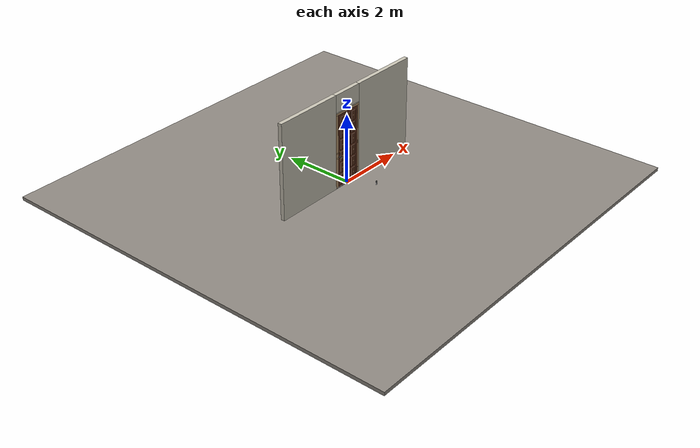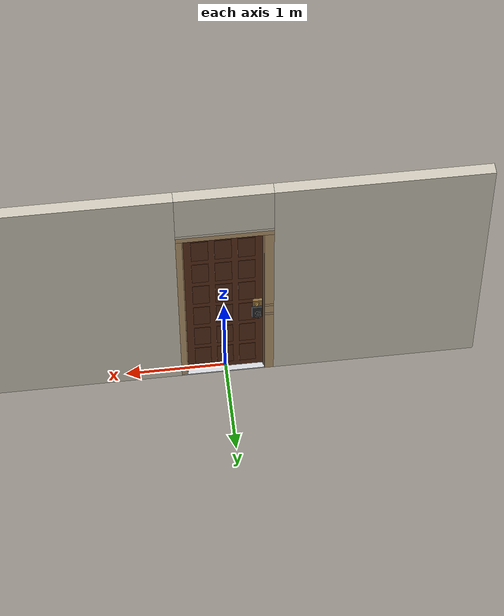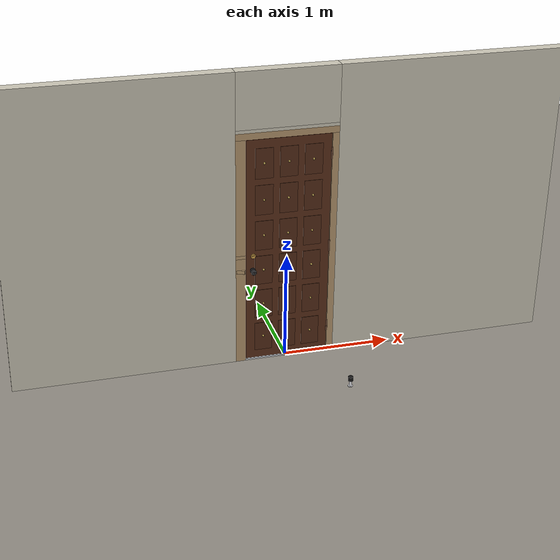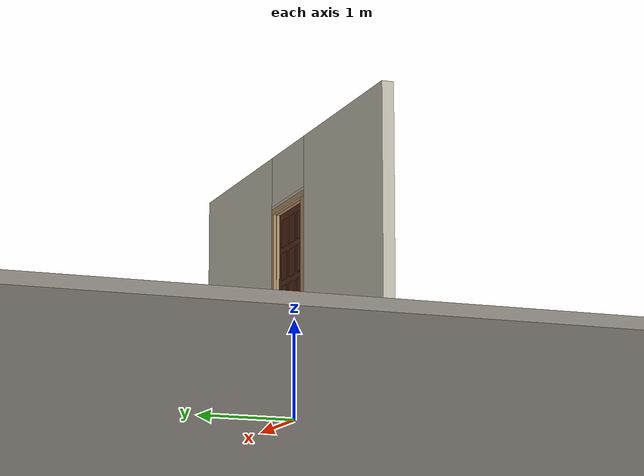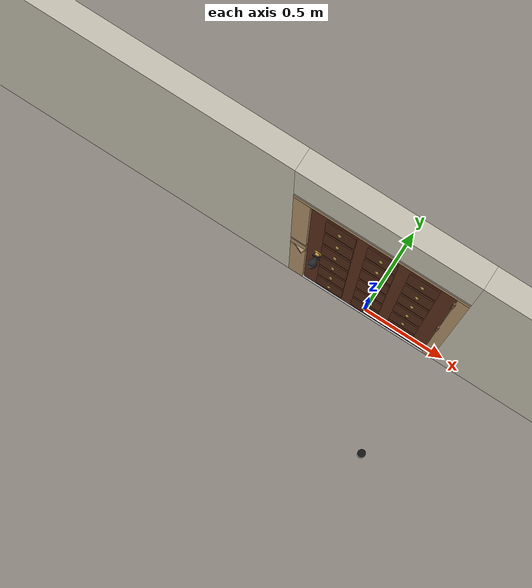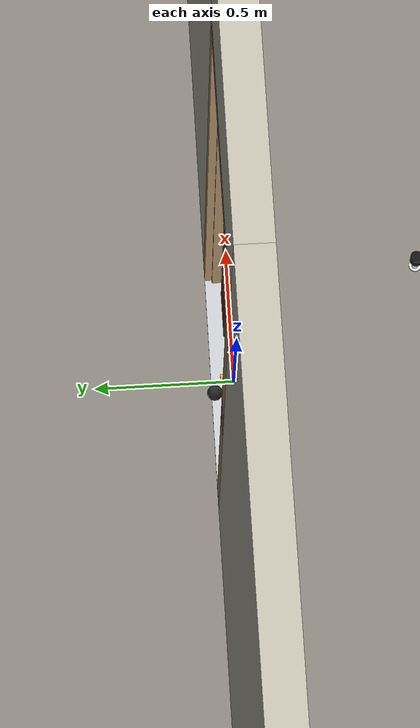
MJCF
<?xml version="1.0" ?>
<mujoco model="db0122_swing_single_full">
  <compiler angle="radian" meshdir="../../hardware" texturedir="../../textures" autolimits="true" inertiafromgeom="false"/>
  <option timestep="0.002" integrator="implicitfast" cone="elliptic" impratio="10" noslip_iterations="3">
    <flag multiccd="enable"/>
  </option>
  <size memory="16M"/>
  <default>
    <geom condim="4" solref="0.005 1" solimp="0.95 0.99 0.001"/>
    <joint solreflimit="0.005 1" solimplimit="0.95 0.99 0.001"/>
    <tendon solreflimit="0.005 1"/>
    <equality solref="0.002 1"/>
  </default>
  <visual>
    <headlight ambient="0.4 0.4 0.4" diffuse="0.7 0.7 0.7" specular="0.2 0.2 0.2"/>
    <quality shadowsize="4096"/>
    <map znear="0.01" zfar="60"/>
  </visual>
  <asset>
    <mesh name="cyl_face_e9e5036966" file="cyl_face_e9e5036966.obj"/>
    <mesh name="hinge_18a63ca062" file="hinge_18a63ca062.obj"/>
    <mesh name="hinge_jamb_e6260b1afb" file="hinge_jamb_e6260b1afb.obj"/>
    <mesh name="knob_3926f4c53b" file="knob_3926f4c53b.obj"/>
    <mesh name="thumbturn_eb5c9899a3" file="thumbturn_eb5c9899a3.obj"/>
    <material name="mat_floor" rgba="0.55 0.53 0.5 1" specular="0.2" shininess="0.15" reflectance="0"/>
    <material name="mat_wall" rgba="0.78 0.76 0.7 1" specular="0.2" shininess="0.1" reflectance="0"/>
    <material name="mat_leaf" rgba="0.35 0.18 0.1 1" specular="0.2" shininess="0.4" reflectance="0"/>
    <material name="mat_leaf_panel" rgba="0.322 0.166 0.092 1" specular="0.2" shininess="0.4" reflectance="0"/>
    <material name="mat_button" rgba="0.7 0.6 0.3 1" specular="0.8" shininess="0.7" reflectance="0.4"/>
    <material name="mat_hinge" rgba="0.45 0.3 0.22 1" specular="0.5" shininess="0.1" reflectance="0.2"/>
    <material name="mat_op_cast_iron" rgba="0.15 0.15 0.16 1" specular="0.5" shininess="0.2" reflectance="0.2"/>
    <material name="mat_rim_case" rgba="0.15 0.15 0.16 1" specular="0.5" shininess="0.2" reflectance="0.2"/>
    <material name="mat_trim" rgba="0.85 0.66 0.3 1" specular="0.8" shininess="0.75" reflectance="0.4"/>
    <material name="mat_bolt" rgba="0.85 0.66 0.3 1" specular="0.8" shininess="0.75" reflectance="0.4"/>
    <material name="mat_night_latch" rgba="0.55 0.42 0.22 1" specular="0.74" shininess="0.45" reflectance="0.36"/>
    <material name="mat_deadbolt" rgba="0.85 0.66 0.3 1" specular="0.8" shininess="0.75" reflectance="0.4"/>
    <material name="mat_frame" rgba="0.7 0.58 0.42 1" specular="0.2" shininess="0.5" reflectance="0"/>
    <material name="mat_threshold" rgba="0.8 0.81 0.83 1" specular="0.8" shininess="0.6" reflectance="0.4"/>
    <material name="mat_bumper_stop" rgba="0.08 0.08 0.08 1" specular="0.2" shininess="0.1" reflectance="0"/>
    <material name="mat_stop_base" rgba="0.9 0.9 0.92 1" specular="0.8" shininess="0.9" reflectance="0.4"/>
    <texture name="skybox" type="skybox" builtin="gradient" rgb1="0.6 0.7 0.85" rgb2="0.9 0.92 0.95" width="256" height="256"/>
  </asset>
  <worldbody>
    <light name="sun" pos="1.5 -2.5 4" dir="-0.3 0.5 -0.8" directional="true" diffuse="0.8 0.8 0.8" specular="0.3 0.3 0.3" castshadow="true"/>
    <light name="fill" pos="-1.5 2.5 3" dir="0.3 -0.5 -0.7" directional="true" diffuse="0.35 0.35 0.4" castshadow="false"/>
    <camera name="robot_view" pos="0 -2.612312 1.812087" xyaxes="1 0 0 0 0.26963 0.962964" fovy="52"/>
    <camera name="far_view" pos="0 2.663312 1.812087" xyaxes="-1 0 0 0 -0.26963 0.962964" fovy="52"/>
    <camera name="iso" pos="-2.004737 -2.190262 2.234138" xyaxes="0.741536 -0.670913 0 0.242917 0.268487 0.932151" fovy="46"/>
    <camera name="detail_handle" pos="-0.14 -0.8725 1.194" xyaxes="0.97561 0.219512 0 -0.070934 0.315262 0.94635" fovy="38"/>
    <geom name="floor" type="box" size="6 6 0.05" pos="0 0 -0.05" material="mat_floor" group="0" contype="1" conaffinity="1" friction="0.8 0.005 0.0001" density="2400"/>
    <geom name="wall_left" type="box" size="1.0125 0.0575 1.3735" pos="-1.4875 0.0255 1.3735" material="mat_wall" group="0" contype="1" conaffinity="1" friction="0.6 0.005 0.0001" density="800"/>
    <geom name="wall_right" type="box" size="1.0275 0.0575 1.3735" pos="1.4725 0.0255 1.3735" material="mat_wall" group="0" contype="1" conaffinity="1" friction="0.6 0.005 0.0001" density="800"/>
    <geom name="wall_header" type="box" size="0.46 0.0575 0.255" pos="-0.015 0.0255 2.492" material="mat_wall" group="0" contype="1" conaffinity="1" friction="0.6 0.005 0.0001" density="800"/>
    <geom name="hinge_0_jamb" type="mesh" mesh="hinge_jamb_e6260b1afb" pos="0.382 -0.032 0.267" quat="0 0 1 0" material="mat_hinge" group="1" contype="0" conaffinity="0" density="7850"/>
    <geom name="hinge_1_jamb" type="mesh" mesh="hinge_jamb_e6260b1afb" pos="0.382 -0.032 1.08" quat="0 0 1 0" material="mat_hinge" group="1" contype="0" conaffinity="0" density="7850"/>
    <geom name="hinge_2_jamb" type="mesh" mesh="hinge_jamb_e6260b1afb" pos="0.382 -0.032 1.963" quat="0 0 1 0" material="mat_hinge" group="1" contype="0" conaffinity="0" density="7850"/>
    <geom name="leaf_deadbolt_strike_b" type="box" size="0.0155 0.003 0.0005" pos="-0.3845 0 1.0355" quat="0.5 0.5 0.5 0.5" material="mat_deadbolt" group="1" contype="0" conaffinity="0" density="7800"/>
    <geom name="leaf_deadbolt_strike_l" type="box" size="0.003 0.0155 0.0005" pos="-0.3845 -0.0125 1.054" quat="0.5 0.5 0.5 0.5" material="mat_deadbolt" group="1" contype="0" conaffinity="0" density="7800"/>
    <geom name="leaf_deadbolt_strike_t" type="box" size="0.0155 0.003 0.0005" pos="-0.3845 0 1.0725" quat="0.5 0.5 0.5 0.5" material="mat_deadbolt" group="1" contype="0" conaffinity="0" density="7800"/>
    <geom name="leaf_deadbolt_strike_r" type="box" size="0.003 0.0155 0.0005" pos="-0.3845 0.0125 1.054" quat="0.5 0.5 0.5 0.5" material="mat_deadbolt" group="1" contype="0" conaffinity="0" density="7800"/>
    <geom name="jamb_hinge" type="box" size="0.03 0.0575 1.0735" pos="0.415 0.0255 1.0735" material="mat_frame" group="0" contype="1" conaffinity="1" friction="0.6 0.005 0.0001" density="750"/>
    <geom name="strike_914_wall_n" type="box" size="0.045 0.037575 0.0167" pos="-0.43 0.045425 0.914" material="mat_frame" group="0" contype="1" conaffinity="1" friction="0.6 0.005 0.0001" density="750"/>
    <geom name="strike_914_wall_p" type="box" size="0.045 0.008 0.0167" pos="-0.43 -0.01585 0.914" material="mat_frame" group="0" contype="1" conaffinity="1" friction="0.6 0.005 0.0001" density="750"/>
    <geom name="strike_914_ramp" type="box" size="0.045 0.01649 0.0167" pos="-0.432784 -0.020157 0.914" quat="0.977148 0 0 -0.212558" material="mat_frame" group="0" contype="1" conaffinity="1" friction="0.12 0.005 0.0001" density="750"/>
    <geom name="strike_914_back" type="box" size="0.03665 0.00785 0.0167" pos="-0.43835 0 0.914" material="mat_frame" group="0" contype="1" conaffinity="1" friction="0.6 0.005 0.0001" density="750"/>
    <geom name="strike_1054_wall_n" type="box" size="0.045 0.03675 0.0155" pos="-0.43 0.04625 1.054" material="mat_frame" group="0" contype="1" conaffinity="1" friction="0.6 0.005 0.0001" density="750"/>
    <geom name="strike_1054_wall_p" type="box" size="0.045 0.01125 0.0155" pos="-0.43 -0.02075 1.054" material="mat_frame" group="0" contype="1" conaffinity="1" friction="0.6 0.005 0.0001" density="750"/>
    <geom name="strike_1054_back" type="box" size="0.035 0.0095 0.0155" pos="-0.44 0 1.054" material="mat_frame" group="0" contype="1" conaffinity="1" friction="0.6 0.005 0.0001" density="750"/>
    <geom name="jamb_strike_0" type="box" size="0.045 0.0575 0.44865" pos="-0.43 0.0255 0.44865" material="mat_frame" group="0" contype="1" conaffinity="1" friction="0.6 0.005 0.0001" density="750"/>
    <geom name="jamb_strike_1" type="box" size="0.045 0.0575 0.0539" pos="-0.43 0.0255 0.9846" material="mat_frame" group="0" contype="1" conaffinity="1" friction="0.6 0.005 0.0001" density="750"/>
    <geom name="jamb_strike_2" type="box" size="0.045 0.0575 0.53875" pos="-0.43 0.0255 1.60825" material="mat_frame" group="0" contype="1" conaffinity="1" friction="0.6 0.005 0.0001" density="750"/>
    <geom name="jamb_head" type="box" size="0.46 0.0575 0.03" pos="-0.015 0.0255 2.177" material="mat_frame" group="0" contype="1" conaffinity="1" friction="0.6 0.005 0.0001" density="750"/>
    <geom name="head_stud" type="box" size="0.46 0.0575 0.015" pos="-0.015 0.0255 2.222" material="mat_wall" group="0" contype="1" conaffinity="1" friction="0.6 0.005 0.0001" density="500"/>
    <geom name="stop_hinge" type="box" size="0.0055 0.016 1.0735" pos="0.3795 0.0415 1.0735" material="mat_frame" group="0" contype="1" conaffinity="1" friction="0.6 0.005 0.0001" density="750"/>
    <geom name="stop_strike" type="box" size="0.0055 0.016 1.0735" pos="-0.3795 0.0415 1.0735" material="mat_frame" group="0" contype="1" conaffinity="1" friction="0.6 0.005 0.0001" density="750"/>
    <geom name="stop_head" type="box" size="0.385 0.016 0.0055" pos="0 0.0415 2.1415" material="mat_frame" group="0" contype="1" conaffinity="1" friction="0.6 0.005 0.0001" density="750"/>
    <geom name="threshold" type="box" size="0.445 0.0575 0.0065" pos="0 0.0255 0.0065" material="mat_threshold" group="0" contype="1" conaffinity="1" friction="0.5 0.005 0.0001" density="2700"/>
    <geom name="door_stop_base" type="cylinder" size="0.022 0.003" pos="0.404 -0.6797 0.003" material="mat_stop_base" group="0" contype="1" conaffinity="1" friction="0.6 0.005 0.0001" density="7850"/>
    <geom name="door_stop_post" type="cylinder" size="0.012 0.0255" pos="0.404 -0.6797 0.0315" material="mat_stop_base" group="0" contype="1" conaffinity="1" friction="0.6 0.005 0.0001" density="7850"/>
    <geom name="door_stop_bumper" type="cylinder" size="0.022 0.02" pos="0.404 -0.6797 0.077" material="mat_bumper_stop" group="0" contype="1" conaffinity="1" friction="0.6 0.005 0.0001" density="1100"/>
    <site name="approach_point" pos="0 -1.5 0" quat="1 0 0 0" size="0.05" rgba="0.2 0.9 0.2 0.5" group="4"/>
    <site name="goal_point" pos="0 1.5 0" quat="1 0 0 0" size="0.05" rgba="0.2 0.9 0.2 0.5" group="4"/>
    <site name="door_plane_center" pos="0 0 1.0735" quat="1 0 0 0" size="0.02" rgba="0.2 0.9 0.2 0.5" group="4"/>
    <body name="leaf" pos="0.385 0 0">
      <inertial pos="-0.388813 0.000504 1.076835" mass="61.706311" quat="-0.496926 -0.501181 -0.498989 0.502883" diaginertia="3.162449694 22.658874673 25.789316527"/>
      <joint name="leaf_hinge" type="hinge" axis="0 0 1" pos="-0.003 -0.032 0" limited="true" range="0 1.570796" damping="0.179937" frictionloss="21.739897" armature="0.02"/>
      <geom name="leaf_slab" type="box" size="0.381 0.025 1.063" pos="-0.384 0 1.08" material="mat_leaf" group="0" contype="1" conaffinity="1" friction="0.5 0.005 0.0001" density="1"/>
      <geom name="leaf_panel_0_n" type="box" size="0.080333 0.003 0.138833" pos="-0.163333 -0.028 0.235833" material="mat_leaf_panel" group="1" contype="0" conaffinity="0" density="1"/>
      <geom name="leaf_panel_0_p" type="box" size="0.080333 0.003 0.138833" pos="-0.163333 0.028 0.235833" material="mat_leaf_panel" group="1" contype="0" conaffinity="0" density="1"/>
      <geom name="leaf_panel_1_n" type="box" size="0.080333 0.003 0.138833" pos="-0.384 -0.028 0.235833" material="mat_leaf_panel" group="1" contype="0" conaffinity="0" density="1"/>
      <geom name="leaf_panel_1_p" type="box" size="0.080333 0.003 0.138833" pos="-0.384 0.028 0.235833" material="mat_leaf_panel" group="1" contype="0" conaffinity="0" density="1"/>
      <geom name="leaf_panel_2_n" type="box" size="0.080333 0.003 0.138833" pos="-0.604667 -0.028 0.235833" material="mat_leaf_panel" group="1" contype="0" conaffinity="0" density="1"/>
      <geom name="leaf_panel_2_p" type="box" size="0.080333 0.003 0.138833" pos="-0.604667 0.028 0.235833" material="mat_leaf_panel" group="1" contype="0" conaffinity="0" density="1"/>
      <geom name="leaf_panel_3_n" type="box" size="0.080333 0.003 0.138833" pos="-0.163333 -0.028 0.5735" material="mat_leaf_panel" group="1" contype="0" conaffinity="0" density="1"/>
      <geom name="leaf_panel_3_p" type="box" size="0.080333 0.003 0.138833" pos="-0.163333 0.028 0.5735" material="mat_leaf_panel" group="1" contype="0" conaffinity="0" density="1"/>
      <geom name="leaf_panel_4_n" type="box" size="0.080333 0.003 0.138833" pos="-0.384 -0.028 0.5735" material="mat_leaf_panel" group="1" contype="0" conaffinity="0" density="1"/>
      <geom name="leaf_panel_4_p" type="box" size="0.080333 0.003 0.138833" pos="-0.384 0.028 0.5735" material="mat_leaf_panel" group="1" contype="0" conaffinity="0" density="1"/>
      <geom name="leaf_panel_5_n" type="box" size="0.080333 0.003 0.138833" pos="-0.604667 -0.028 0.5735" material="mat_leaf_panel" group="1" contype="0" conaffinity="0" density="1"/>
      <geom name="leaf_panel_5_p" type="box" size="0.080333 0.003 0.138833" pos="-0.604667 0.028 0.5735" material="mat_leaf_panel" group="1" contype="0" conaffinity="0" density="1"/>
      <geom name="leaf_panel_6_n" type="box" size="0.080333 0.003 0.138833" pos="-0.163333 -0.028 0.911167" material="mat_leaf_panel" group="1" contype="0" conaffinity="0" density="1"/>
      <geom name="leaf_panel_6_p" type="box" size="0.080333 0.003 0.138833" pos="-0.163333 0.028 0.911167" material="mat_leaf_panel" group="1" contype="0" conaffinity="0" density="1"/>
      <geom name="leaf_panel_7_n" type="box" size="0.080333 0.003 0.138833" pos="-0.384 -0.028 0.911167" material="mat_leaf_panel" group="1" contype="0" conaffinity="0" density="1"/>
      <geom name="leaf_panel_7_p" type="box" size="0.080333 0.003 0.138833" pos="-0.384 0.028 0.911167" material="mat_leaf_panel" group="1" contype="0" conaffinity="0" density="1"/>
      <geom name="leaf_panel_8_n" type="box" size="0.080333 0.003 0.138833" pos="-0.604667 -0.028 0.911167" material="mat_leaf_panel" group="1" contype="0" conaffinity="0" density="1"/>
      <geom name="leaf_panel_8_p" type="box" size="0.080333 0.003 0.138833" pos="-0.604667 0.028 0.911167" material="mat_leaf_panel" group="1" contype="0" conaffinity="0" density="1"/>
      <geom name="leaf_panel_9_n" type="box" size="0.080333 0.003 0.138833" pos="-0.163333 -0.028 1.248833" material="mat_leaf_panel" group="1" contype="0" conaffinity="0" density="1"/>
      <geom name="leaf_panel_9_p" type="box" size="0.080333 0.003 0.138833" pos="-0.163333 0.028 1.248833" material="mat_leaf_panel" group="1" contype="0" conaffinity="0" density="1"/>
      <geom name="leaf_panel_10_n" type="box" size="0.080333 0.003 0.138833" pos="-0.384 -0.028 1.248833" material="mat_leaf_panel" group="1" contype="0" conaffinity="0" density="1"/>
      <geom name="leaf_panel_10_p" type="box" size="0.080333 0.003 0.138833" pos="-0.384 0.028 1.248833" material="mat_leaf_panel" group="1" contype="0" conaffinity="0" density="1"/>
      <geom name="leaf_panel_11_n" type="box" size="0.080333 0.003 0.138833" pos="-0.604667 -0.028 1.248833" material="mat_leaf_panel" group="1" contype="0" conaffinity="0" density="1"/>
      <geom name="leaf_panel_11_p" type="box" size="0.080333 0.003 0.138833" pos="-0.604667 0.028 1.248833" material="mat_leaf_panel" group="1" contype="0" conaffinity="0" density="1"/>
      <geom name="leaf_panel_12_n" type="box" size="0.080333 0.003 0.138833" pos="-0.163333 -0.028 1.5865" material="mat_leaf_panel" group="1" contype="0" conaffinity="0" density="1"/>
      <geom name="leaf_panel_12_p" type="box" size="0.080333 0.003 0.138833" pos="-0.163333 0.028 1.5865" material="mat_leaf_panel" group="1" contype="0" conaffinity="0" density="1"/>
      <geom name="leaf_panel_13_n" type="box" size="0.080333 0.003 0.138833" pos="-0.384 -0.028 1.5865" material="mat_leaf_panel" group="1" contype="0" conaffinity="0" density="1"/>
      <geom name="leaf_panel_13_p" type="box" size="0.080333 0.003 0.138833" pos="-0.384 0.028 1.5865" material="mat_leaf_panel" group="1" contype="0" conaffinity="0" density="1"/>
      <geom name="leaf_panel_14_n" type="box" size="0.080333 0.003 0.138833" pos="-0.604667 -0.028 1.5865" material="mat_leaf_panel" group="1" contype="0" conaffinity="0" density="1"/>
      <geom name="leaf_panel_14_p" type="box" size="0.080333 0.003 0.138833" pos="-0.604667 0.028 1.5865" material="mat_leaf_panel" group="1" contype="0" conaffinity="0" density="1"/>
      <geom name="leaf_panel_15_n" type="box" size="0.080333 0.003 0.138833" pos="-0.163333 -0.028 1.924167" material="mat_leaf_panel" group="1" contype="0" conaffinity="0" density="1"/>
      <geom name="leaf_panel_15_p" type="box" size="0.080333 0.003 0.138833" pos="-0.163333 0.028 1.924167" material="mat_leaf_panel" group="1" contype="0" conaffinity="0" density="1"/>
      <geom name="leaf_panel_16_n" type="box" size="0.080333 0.003 0.138833" pos="-0.384 -0.028 1.924167" material="mat_leaf_panel" group="1" contype="0" conaffinity="0" density="1"/>
      <geom name="leaf_panel_16_p" type="box" size="0.080333 0.003 0.138833" pos="-0.384 0.028 1.924167" material="mat_leaf_panel" group="1" contype="0" conaffinity="0" density="1"/>
      <geom name="leaf_panel_17_n" type="box" size="0.080333 0.003 0.138833" pos="-0.604667 -0.028 1.924167" material="mat_leaf_panel" group="1" contype="0" conaffinity="0" density="1"/>
      <geom name="leaf_panel_17_p" type="box" size="0.080333 0.003 0.138833" pos="-0.604667 0.028 1.924167" material="mat_leaf_panel" group="1" contype="0" conaffinity="0" density="1"/>
      <geom name="leaf_tuft_0" type="sphere" size="0.01" pos="-0.163333 -0.033 0.235833" material="mat_button" group="2" contype="0" conaffinity="0" density="7850"/>
      <geom name="leaf_tuft_1" type="sphere" size="0.01" pos="-0.384 -0.033 0.235833" material="mat_button" group="2" contype="0" conaffinity="0" density="7850"/>
      <geom name="leaf_tuft_2" type="sphere" size="0.01" pos="-0.604667 -0.033 0.235833" material="mat_button" group="2" contype="0" conaffinity="0" density="7850"/>
      <geom name="leaf_tuft_3" type="sphere" size="0.01" pos="-0.163333 -0.033 0.5735" material="mat_button" group="2" contype="0" conaffinity="0" density="7850"/>
      <geom name="leaf_tuft_4" type="sphere" size="0.01" pos="-0.384 -0.033 0.5735" material="mat_button" group="2" contype="0" conaffinity="0" density="7850"/>
      <geom name="leaf_tuft_5" type="sphere" size="0.01" pos="-0.604667 -0.033 0.5735" material="mat_button" group="2" contype="0" conaffinity="0" density="7850"/>
      <geom name="leaf_tuft_6" type="sphere" size="0.01" pos="-0.163333 -0.033 0.911167" material="mat_button" group="2" contype="0" conaffinity="0" density="7850"/>
      <geom name="leaf_tuft_7" type="sphere" size="0.01" pos="-0.384 -0.033 0.911167" material="mat_button" group="2" contype="0" conaffinity="0" density="7850"/>
      <geom name="leaf_tuft_8" type="sphere" size="0.01" pos="-0.604667 -0.033 0.911167" material="mat_button" group="2" contype="0" conaffinity="0" density="7850"/>
      <geom name="leaf_tuft_9" type="sphere" size="0.01" pos="-0.163333 -0.033 1.248833" material="mat_button" group="2" contype="0" conaffinity="0" density="7850"/>
      <geom name="leaf_tuft_10" type="sphere" size="0.01" pos="-0.384 -0.033 1.248833" material="mat_button" group="2" contype="0" conaffinity="0" density="7850"/>
      <geom name="leaf_tuft_11" type="sphere" size="0.01" pos="-0.604667 -0.033 1.248833" material="mat_button" group="2" contype="0" conaffinity="0" density="7850"/>
      <geom name="leaf_tuft_12" type="sphere" size="0.01" pos="-0.163333 -0.033 1.5865" material="mat_button" group="2" contype="0" conaffinity="0" density="7850"/>
      <geom name="leaf_tuft_13" type="sphere" size="0.01" pos="-0.384 -0.033 1.5865" material="mat_button" group="2" contype="0" conaffinity="0" density="7850"/>
      <geom name="leaf_tuft_14" type="sphere" size="0.01" pos="-0.604667 -0.033 1.5865" material="mat_button" group="2" contype="0" conaffinity="0" density="7850"/>
      <geom name="leaf_tuft_15" type="sphere" size="0.01" pos="-0.163333 -0.033 1.924167" material="mat_button" group="2" contype="0" conaffinity="0" density="7850"/>
      <geom name="leaf_tuft_16" type="sphere" size="0.01" pos="-0.384 -0.033 1.924167" material="mat_button" group="2" contype="0" conaffinity="0" density="7850"/>
      <geom name="leaf_tuft_17" type="sphere" size="0.01" pos="-0.604667 -0.033 1.924167" material="mat_button" group="2" contype="0" conaffinity="0" density="7850"/>
      <geom name="hinge_0" type="mesh" mesh="hinge_18a63ca062" pos="-0.003 -0.032 0.267" quat="0 0 1 0" material="mat_hinge" group="1" contype="0" conaffinity="0" density="7850"/>
      <geom name="hinge_1" type="mesh" mesh="hinge_18a63ca062" pos="-0.003 -0.032 1.08" quat="0 0 1 0" material="mat_hinge" group="1" contype="0" conaffinity="0" density="7850"/>
      <geom name="hinge_2" type="mesh" mesh="hinge_18a63ca062" pos="-0.003 -0.032 1.963" quat="0 0 1 0" material="mat_hinge" group="1" contype="0" conaffinity="0" density="7850"/>
      <geom name="leaf_handle_rim_case" type="box" size="0.05 0.015 0.08" pos="-0.701 0.04 0.914" material="mat_rim_case" group="0" contype="1" conaffinity="1" friction="0.6 0.005 0.0001" density="2500"/>
      <geom name="leaf_latch_bolt_faceplate" type="box" size="0.0006 0.01235 0.0267" pos="-0.7644 0 0.914" material="mat_bolt" group="1" contype="0" conaffinity="0" density="8500"/>
      <geom name="leaf_night_latch_case" type="box" size="0.046 0.014 0.042" pos="-0.705 0.039 1.054" material="mat_night_latch" group="0" contype="1" conaffinity="1" friction="0.6 0.005 0.0001" density="2500"/>
      <geom name="leaf_deadbolt_faceplate" type="box" size="0.0006 0.014 0.0245" pos="-0.7644 0 1.054" material="mat_deadbolt" group="1" contype="0" conaffinity="0" density="8500"/>
      <geom name="leaf_deadbolt_cylinder_face" type="mesh" mesh="cyl_face_e9e5036966" pos="-0.7 -0.025 1.054" quat="0 0 -0.707107 0.707107" material="mat_deadbolt" group="1" contype="0" conaffinity="0" density="7100"/>
      <site name="leaf_edge_mid" pos="-0.765 0 1.063" quat="1 0 0 0" size="0.02" rgba="0.2 0.9 0.2 0.5" group="4"/>
      <body name="leaf_handle" pos="-0.705 0 0.914">
        <inertial pos="0 0.013293 0" mass="0.982919" quat="0.5 0.5 0.5 0.5" diaginertia="0.000192299 0.005774753 0.005774753"/>
        <joint name="leaf_handle_hinge" type="hinge" axis="0 1 0" limited="true" range="0 0.85" damping="0.156402" frictionloss="0.052" stiffness="0.6" springref="-0.5" armature="0.01"/>
        <geom name="leaf_handle_spindle" type="cylinder" size="0.006 0.063" pos="0 0 0" quat="0.707107 -0.707107 0 0" material="mat_op_cast_iron" group="1" contype="0" conaffinity="0" density="7850"/>
        <geom name="leaf_handle_knob_n" type="mesh" mesh="knob_3926f4c53b" pos="0 -0.025 0" quat="0 0 -0.707107 0.707107" material="mat_op_cast_iron" group="1" contype="0" conaffinity="0" density="3000"/>
        <geom name="leaf_handle_knob_col_n" type="sphere" size="0.0225" pos="0 -0.0725 0" material="mat_op_cast_iron" group="0" contype="1" conaffinity="1" friction="0.9 0.01 0.0001" density="3000"/>
        <geom name="leaf_handle_knob_neck_n" type="cylinder" size="0.011 0.012" pos="0 -0.037 0" quat="0.707107 -0.707107 0 0" material="mat_op_cast_iron" group="3" contype="1" conaffinity="1" rgba="0.8 0.3 0.3 0.25" friction="0.6 0.005 0.0001" density="3000"/>
        <geom name="leaf_handle_knob_p" type="mesh" mesh="knob_3926f4c53b" pos="0 0.055 0" quat="0 0 0.707107 0.707107" material="mat_op_cast_iron" group="1" contype="0" conaffinity="0" density="3000"/>
        <geom name="leaf_handle_knob_col_p" type="sphere" size="0.0225" pos="0 0.1025 0" material="mat_op_cast_iron" group="0" contype="1" conaffinity="1" friction="0.9 0.01 0.0001" density="3000"/>
        <geom name="leaf_handle_knob_neck_p" type="cylinder" size="0.011 0.012" pos="0 0.067 0" quat="0.707107 -0.707107 0 0" material="mat_op_cast_iron" group="3" contype="1" conaffinity="1" rgba="0.8 0.3 0.3 0.25" friction="0.6 0.005 0.0001" density="3000"/>
        <site name="leaf_handle_grip_n" pos="0 -0.0725 0" quat="1 0 0 0" size="0.012" rgba="0.2 0.9 0.2 0.5" group="4"/>
        <site name="leaf_handle_grip_p" pos="0 0.1025 0" quat="1 0 0 0" size="0.012" rgba="0.2 0.9 0.2 0.5" group="4"/>
      </body>
      <body name="leaf_latch_bolt" pos="-0.765 0 0.914">
        <inertial pos="0.00865 0 0" mass="0.041419" quat="0.92388 0.382683 0 0" diaginertia="0.000000798 0.000005598 0.000005598"/>
        <joint name="leaf_latch_bolt_slide" type="slide" axis="1 0 0" limited="true" range="0 0.0127" damping="2" frictionloss="0.3" stiffness="300" springref="-0.008333" armature="0.1"/>
        <geom name="leaf_latch_bolt_capsule" type="capsule" size="0.00635 0.015" pos="0.00865 0 0" quat="0.707107 0 -0.707107 0" material="mat_bolt" group="0" contype="1" conaffinity="1" friction="0.2 0.005 0.0001" density="8500"/>
      </body>
      <body name="leaf_deadbolt" pos="-0.765 0 1.054">
        <inertial pos="0.023 0 0" mass="0.1564" quat="0 0 0.707107 0.707107" diaginertia="0.000011482 0.000030915 0.000035724"/>
        <joint name="leaf_deadbolt_slide" type="slide" axis="1 0 0" limited="true" range="0 0.016" damping="5" frictionloss="1.5" armature="0.1" ref="0.016"/>
        <geom name="leaf_deadbolt_box" type="box" size="0.023 0.008 0.0125" pos="0.023 0 0" material="mat_deadbolt" group="0" contype="1" conaffinity="1" friction="0.3 0.005 0.0001" density="8500"/>
      </body>
      <body name="leaf_deadbolt_thumbturn" pos="-0.7 0.053 1.054">
        <inertial pos="0 0.012928 0" mass="0.178946" quat="-0.199079 0.678504 0.678504 -0.199079" diaginertia="0.000026045 0.000026215 0.000032438"/>
        <joint name="leaf_deadbolt_thumbturn_hinge" type="hinge" axis="0 -1 0" limited="true" range="0 1" damping="0.05" frictionloss="0.25" armature="0.005" ref="1"/>
        <geom name="leaf_deadbolt_thumbturn_mesh" type="mesh" mesh="thumbturn_eb5c9899a3" pos="0 0 0" quat="0.339005 -0.339005 0.620545 0.620545" material="mat_deadbolt" group="0" contype="1" conaffinity="1" friction="0.6 0.005 0.0001" density="7100"/>
        <geom name="leaf_deadbolt_thumbturn_col" type="box" size="0.006 0.012 0.016" pos="0 0.02 0" quat="0.877583 0 -0.479426 0" material="mat_deadbolt" group="3" contype="1" conaffinity="1" rgba="0.8 0.3 0.3 0.25" friction="0.6 0.005 0.0001" density="7100"/>
      </body>
    </body>
  </worldbody>
  <tendon>
    <fixed name="leaf_latch_bolt_coupling" limited="true" range="0 10">
      <joint joint="leaf_latch_bolt_slide" coef="1"/>
      <joint joint="leaf_handle_hinge" coef="-0.016494"/>
    </fixed>
  </tendon>
  <equality>
    <joint name="leaf_deadbolt_couple" joint1="leaf_deadbolt_slide" joint2="leaf_deadbolt_thumbturn_hinge" polycoef="0 0.016 0 0 0" active="true"/>
  </equality>
  <contact>
    <exclude body1="leaf_deadbolt" body2="leaf_deadbolt_thumbturn"/>
  </contact>
  <sensor>
    <jointpos name="leaf_hinge_pos" joint="leaf_hinge"/>
    <jointvel name="leaf_hinge_vel" joint="leaf_hinge"/>
    <jointpos name="leaf_handle_hinge_pos" joint="leaf_handle_hinge"/>
    <jointvel name="leaf_handle_hinge_vel" joint="leaf_handle_hinge"/>
    <jointpos name="leaf_latch_bolt_slide_pos" joint="leaf_latch_bolt_slide"/>
    <jointvel name="leaf_latch_bolt_slide_vel" joint="leaf_latch_bolt_slide"/>
    <jointpos name="leaf_deadbolt_slide_pos" joint="leaf_deadbolt_slide"/>
    <jointvel name="leaf_deadbolt_slide_vel" joint="leaf_deadbolt_slide"/>
    <jointpos name="leaf_deadbolt_thumbturn_hinge_pos" joint="leaf_deadbolt_thumbturn_hinge"/>
    <jointvel name="leaf_deadbolt_thumbturn_hinge_vel" joint="leaf_deadbolt_thumbturn_hinge"/>
  </sensor>
</mujoco>
